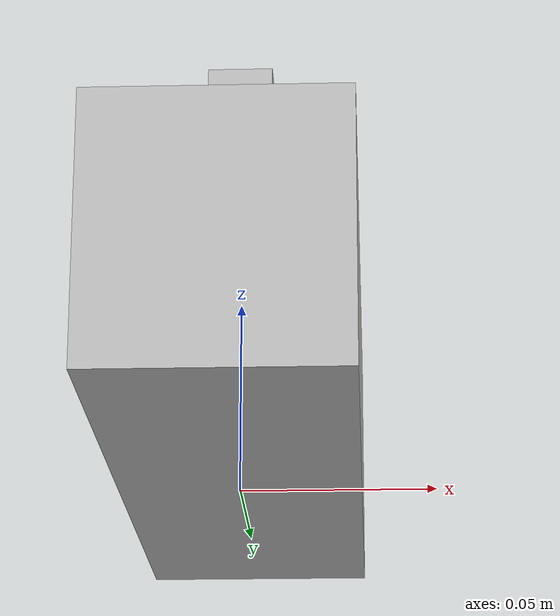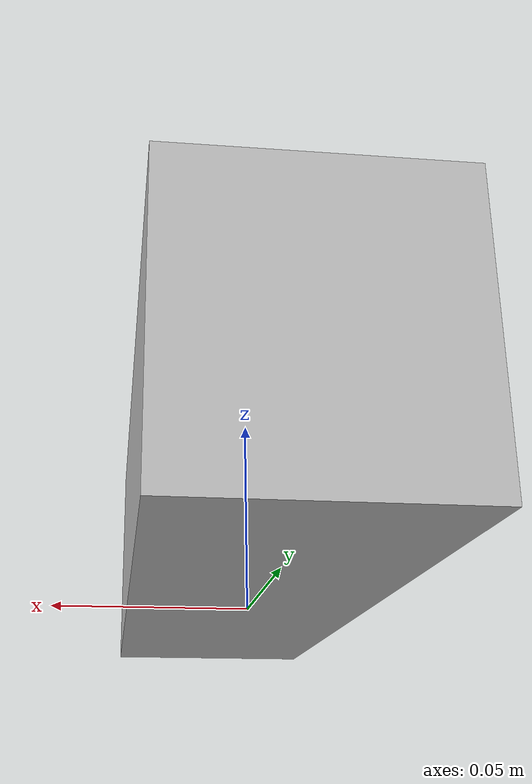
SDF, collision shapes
<?xml version="1.0"?>
<!-- This sdf file is based on panda_hand.urdf -->
<sdf version="1.7">
    <model name="hand">
        <link name = "panda_hand">
            <inertial>
                <mass>0.73</mass>
                <pose>0 0.0015244 0.0275912 0 0 0</pose>
                <inertia>
                    <ixx>0.00278560230025</ixx>
                    <ixy>0.0</ixy>
                    <ixz>0.0</ixz>
                    <iyy>0.000400033405336</iyy>
                    <iyz>0.0</iyz>
                    <izz>0.00256378041832</izz>
                </inertia>
            </inertial>
            <self_collide>0</self_collide>
            <kinematic>0</kinematic>
            <visual name = "visual">
                <pose>0 0 0 1.57079632679 0 0</pose>
                <geometry>
                    <mesh>
                        <scale>1 1 1</scale>
                        <uri>./meshes/panda_meshes/hand.obj</uri>
                    </mesh>
                    <material>
                      <diffuse>1.0 1.0 1.0 1.0</diffuse>
                    </material>
                </geometry>
            </visual>
            <collision name="collision">
                <pose>0 0 0.033 0 0 0</pose>
                <laser_retro>0</laser_retro>
                <max_contacts>10</max_contacts>
                <geometry>
                    <box>
                        <size>0.062 0.20 0.066</size>
                    </box>
                </geometry>
                <surface>
                    <friction>
                        <ode>
                            <mu>1</mu>
                            <mu2>1</mu2>
                            <fdir1>0 0 0</fdir1>
                            <slip1>0</slip1>
                            <slip2>0</slip2>
                        </ode>
                        <torsional>
                            <coefficient>1</coefficient>
                            <patch_radius>0</patch_radius>
                            <surface_radius>0</surface_radius>
                            <use_patch_radius>1</use_patch_radius>
                            <ode>
                                <slip>0</slip>
                            </ode>
                        </torsional>
                    </friction>
                    <bounce>
                        <restitution_coefficient>0</restitution_coefficient>
                        <threshold>1e+06</threshold>
                    </bounce>
                    <contact>
                        <collide_without_contact>0</collide_without_contact>
                        <collide_without_contact_bitmask>1</collide_without_contact_bitmask>
                        <collide_bitmask>1</collide_bitmask>
                        <ode>
                            <soft_cfm>0</soft_cfm>
                            <soft_erp>0.2</soft_erp>
                            <kp>1e+13</kp>
                            <kd>1</kd>
                            <max_vel>0.01</max_vel>
                            <min_depth>0</min_depth>
                        </ode>
                        <bullet>
                            <split_impulse>1</split_impulse>
                            <split_impulse_penetration_threshold>-0.01</split_impulse_penetration_threshold>
                            <soft_cfm>0</soft_cfm>
                            <soft_erp>0.2</soft_erp>
                            <kp>1e+13</kp>
                            <kd>1</kd>
                            </bullet>
                    </contact>
                </surface>
            </collision>
        </link>
        <link name="panda_leftfinger">
            <pose>0 0 0.0584 0 0 0</pose>
            <inertial>
                <mass>0.1</mass>
                <pose>0 0.0145644 0.0227941 0 0 0</pose>
                <inertia>
                    <ixx>3.01220925051e-05</ixx>
                    <ixy>0.0</ixy>
                    <ixz>0.0</ixz>
                    <iyy>2.95873808038e-05</iyy>
                    <iyz>0.0</iyz>
                    <izz>6.95125211657e-06</izz>
                </inertia>
            </inertial>
            <self_collide>0</self_collide>
            <kinematic>0</kinematic>
            <visual name = "visual">
                <pose>0 0 0 1.57079632679 0 0</pose>
                <geometry>
                    <mesh>
                        <scale>1 1 1</scale>
                        <uri>./meshes/panda_meshes/finger.obj</uri>
                    </mesh>
                    <material>
                      <diffuse>0.0 0.0 0.0 1.0</diffuse>
                    </material>
                </geometry>
            </visual>
            <collision name="tip_collision">
                <pose>0 0.007 0.045 0 0 0</pose>
                <laser_retro>0</laser_retro>
                <max_contacts>10</max_contacts>
                <geometry>
                    <box>
                        <size>0.017 0.014 0.017</size>
                    </box>
                </geometry>
                <surface>
                    <friction>
                        <ode>
                            <mu>1</mu>
                            <mu2>1</mu2>
                            <fdir1>0 0 0</fdir1>
                            <slip1>0</slip1>
                            <slip2>0</slip2>
                        </ode>
                        <torsional>
                            <coefficient>1</coefficient>
                            <patch_radius>0</patch_radius>
                            <surface_radius>0</surface_radius>
                            <use_patch_radius>1</use_patch_radius>
                            <ode>
                                <slip>0</slip>
                            </ode>
                        </torsional>
                    </friction>
                    <bounce>
                        <restitution_coefficient>0</restitution_coefficient>
                        <threshold>1e+06</threshold>
                    </bounce>
                    <contact>
                        <collide_without_contact>0</collide_without_contact>
                        <collide_without_contact_bitmask>1</collide_without_contact_bitmask>
                        <collide_bitmask>1</collide_bitmask>
                        <ode>
                            <soft_cfm>0</soft_cfm>
                            <soft_erp>0.2</soft_erp>
                            <kp>1e+13</kp>
                            <kd>1</kd>
                            <max_vel>0.01</max_vel>
                            <min_depth>0</min_depth>
                        </ode>
                        <bullet>
                            <split_impulse>1</split_impulse>
                            <split_impulse_penetration_threshold>-0.01</split_impulse_penetration_threshold>
                            <soft_cfm>0</soft_cfm>
                            <soft_erp>0.2</soft_erp>
                            <kp>1e+13</kp>
                            <kd>1</kd>
                            </bullet>
                    </contact>
                </surface>
            </collision>
            <collision name="big_collision">
                <pose>0 0.015 0.018 0 0 0</pose>
                <laser_retro>0</laser_retro>
                <max_contacts>10</max_contacts>
                <geometry>
                    <box>
                        <size>0.017 0.014 0.036</size>
                    </box>
                </geometry>
                <surface>
                    <friction>
                        <ode>
                            <mu>1</mu>
                            <mu2>1</mu2>
                            <fdir1>0 0 0</fdir1>
                            <slip1>0</slip1>
                            <slip2>0</slip2>
                        </ode>
                        <torsional>
                            <coefficient>1</coefficient>
                            <patch_radius>0</patch_radius>
                            <surface_radius>0</surface_radius>
                            <use_patch_radius>1</use_patch_radius>
                            <ode>
                                <slip>0</slip>
                            </ode>
                        </torsional>
                    </friction>
                    <bounce>
                        <restitution_coefficient>0</restitution_coefficient>
                        <threshold>1e+06</threshold>
                    </bounce>
                    <contact>
                        <collide_without_contact>0</collide_without_contact>
                        <collide_without_contact_bitmask>1</collide_without_contact_bitmask>
                        <collide_bitmask>1</collide_bitmask>
                        <ode>
                            <soft_cfm>0</soft_cfm>
                            <soft_erp>0.2</soft_erp>
                            <kp>1e+13</kp>
                            <kd>1</kd>
                            <max_vel>0.01</max_vel>
                            <min_depth>0</min_depth>
                        </ode>
                        <bullet>
                            <split_impulse>1</split_impulse>
                            <split_impulse_penetration_threshold>-0.01</split_impulse_penetration_threshold>
                            <soft_cfm>0</soft_cfm>
                            <soft_erp>0.2</soft_erp>
                            <kp>1e+13</kp>
                            <kd>1</kd>
                            </bullet>
                    </contact>
                </surface>
            </collision>
        </link>
        <link name="panda_rightfinger">
            <pose>0 0 0.0584 0 0 0</pose>
            <inertial>
                <mass>0.1</mass>
                <pose>0 0.0145644 0.0227941 0 0 0</pose>
                <inertia>
                    <ixx>3.01220925051e-05</ixx>
                    <ixy>0.0</ixy>
                    <ixz>0.0</ixz>
                    <iyy>2.95873808038e-05</iyy>
                    <iyz>0.0</iyz>
                    <izz>6.95125211657e-06</izz>
                </inertia>
            </inertial>
            <self_collide>0</self_collide>
            <kinematic>0</kinematic>
            <visual name = "visual">
                <pose>0 0 0 1.57079632679 0 3.14159265359</pose>
                <geometry>
                    <mesh>
                        <scale>1 1 1</scale>
                        <uri>./meshes/panda_meshes/finger.obj</uri>
                    </mesh>
                    <material>
                      <diffuse>1.0 1.0 1.0 1.0</diffuse>
                    </material>
                </geometry>
            </visual>
            <collision name="tip_collision">
                <pose>0 -0.007 0.045 0 0 0</pose>
                <laser_retro>0</laser_retro>
                <max_contacts>10</max_contacts>
                <geometry>
                    <box>
                        <size>0.017 0.014 0.017</size>
                    </box>
                </geometry>
                <surface>
                    <friction>
                        <ode>
                            <mu>1</mu>
                            <mu2>1</mu2>
                            <fdir1>0 0 0</fdir1>
                            <slip1>0</slip1>
                            <slip2>0</slip2>
                        </ode>
                        <torsional>
                            <coefficient>1</coefficient>
                            <patch_radius>0</patch_radius>
                            <surface_radius>0</surface_radius>
                            <use_patch_radius>1</use_patch_radius>
                            <ode>
                                <slip>0</slip>
                            </ode>
                        </torsional>
                    </friction>
                    <bounce>
                        <restitution_coefficient>0</restitution_coefficient>
                        <threshold>1e+06</threshold>
                    </bounce>
                    <contact>
                        <collide_without_contact>0</collide_without_contact>
                        <collide_without_contact_bitmask>1</collide_without_contact_bitmask>
                        <collide_bitmask>1</collide_bitmask>
                        <ode>
                            <soft_cfm>0</soft_cfm>
                            <soft_erp>0.2</soft_erp>
                            <kp>1e+13</kp>
                            <kd>1</kd>
                            <max_vel>0.01</max_vel>
                            <min_depth>0</min_depth>
                        </ode>
                        <bullet>
                            <split_impulse>1</split_impulse>
                            <split_impulse_penetration_threshold>-0.01</split_impulse_penetration_threshold>
                            <soft_cfm>0</soft_cfm>
                            <soft_erp>0.2</soft_erp>
                            <kp>1e+13</kp>
                            <kd>1</kd>
                            </bullet>
                    </contact>
                </surface>
            </collision>
            <collision name="big_collision">
                <pose>0 -0.015 0.018 0 0 0</pose>
                <laser_retro>0</laser_retro>
                <max_contacts>10</max_contacts>
                <geometry>
                    <box>
                        <size>0.017 0.014 0.036</size>
                    </box>
                </geometry>
                <surface>
                    <friction>
                        <ode>
                            <mu>1</mu>
                            <mu2>1</mu2>
                            <fdir1>0 0 0</fdir1>
                            <slip1>0</slip1>
                            <slip2>0</slip2>
                        </ode>
                        <torsional>
                            <coefficient>1</coefficient>
                            <patch_radius>0</patch_radius>
                            <surface_radius>0</surface_radius>
                            <use_patch_radius>1</use_patch_radius>
                            <ode>
                                <slip>0</slip>
                            </ode>
                        </torsional>
                    </friction>
                    <bounce>
                        <restitution_coefficient>0</restitution_coefficient>
                        <threshold>1e+06</threshold>
                    </bounce>
                    <contact>
                        <collide_without_contact>0</collide_without_contact>
                        <collide_without_contact_bitmask>1</collide_without_contact_bitmask>
                        <collide_bitmask>1</collide_bitmask>
                        <ode>
                            <soft_cfm>0</soft_cfm>
                            <soft_erp>0.2</soft_erp>
                            <kp>1e+13</kp>
                            <kd>1</kd>
                            <max_vel>0.01</max_vel>
                            <min_depth>0</min_depth>
                        </ode>
                        <bullet>
                            <split_impulse>1</split_impulse>
                            <split_impulse_penetration_threshold>-0.01</split_impulse_penetration_threshold>
                            <soft_cfm>0</soft_cfm>
                            <soft_erp>0.2</soft_erp>
                            <kp>1e+13</kp>
                            <kd>1</kd>
                            </bullet>
                    </contact>
                </surface>
            </collision>
        </link>
        <joint name="left_finger_sliding_joint" type="prismatic">
            <parent>panda_hand</parent>
            <child>panda_leftfinger</child>
            <axis>
                <xyz>0 1 0</xyz>
                <!-- Drake attaches an actuator to all and only joints with a nonzero
                 effort limit. -->
                <limit>
                    <lower>0.0</lower>
                    <upper>0.04</upper>
                    <effort>20</effort>
                    <stiffness>15000</stiffness>
                    <dissipation>50</dissipation>
                </limit>
                <dynamics>
                    <spring_reference>0</spring_reference>
                    <spring_stiffness>0</spring_stiffness>
                    <damping>0</damping>
                    <friction>0</friction>
                </dynamics>
            </axis>
            <physics>
                <ode>
                    <limit>
                        <cfm>0</cfm>
                        <erp>0.2</erp>
                    </limit>
                <suspension>
                    <cfm>0</cfm>
                    <erp>0.2</erp>
                </suspension>
                </ode>
            </physics>
        </joint>
        <joint name="right_finger_sliding_joint" type="prismatic">
            <parent>panda_hand</parent>
            <child>panda_rightfinger</child>
            <axis>
                <xyz>0 -1 0</xyz>
                <!-- Drake attaches an actuator to all and only joints with a nonzero
                 effort limit. -->
                <limit>
                    <lower>0.0</lower>
                    <upper>0.04</upper>
                    <effort>20</effort>
                    <stiffness>15000</stiffness>
                    <dissipation>50</dissipation>
                </limit>
                <dynamics>
                    <spring_reference>0</spring_reference>
                    <spring_stiffness>0</spring_stiffness>
                    <damping>0</damping>
                    <friction>0</friction>
                </dynamics>
            </axis>
            <physics>
                <ode>
                    <limit>
                        <cfm>0</cfm>
                        <erp>0.2</erp>
                    </limit>
                <suspension>
                    <cfm>0</cfm>
                    <erp>0.2</erp>
                </suspension>
                </ode>
            </physics>
        </joint>
    </model>
    <drake:collision_filter_group name="group_left_right">
        <drake:member link="panda_leftfinger"/>
        <drake:member link="panda_rightfinger"/>
        <drake:ignored_collision_filter_group name="group_left_right"/>
    </drake:collision_filter_group>
</sdf>
